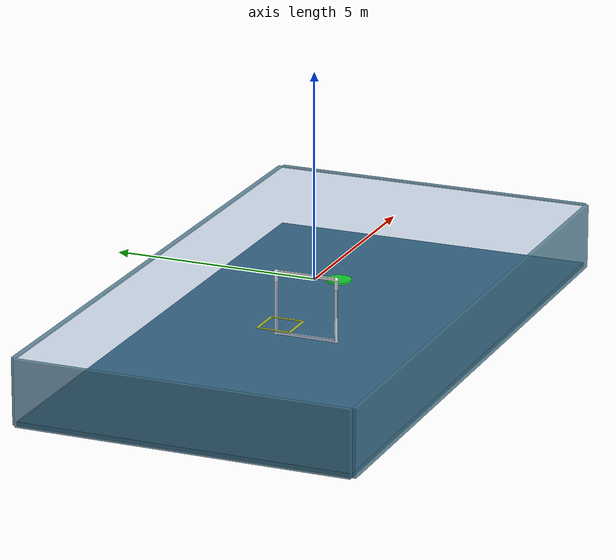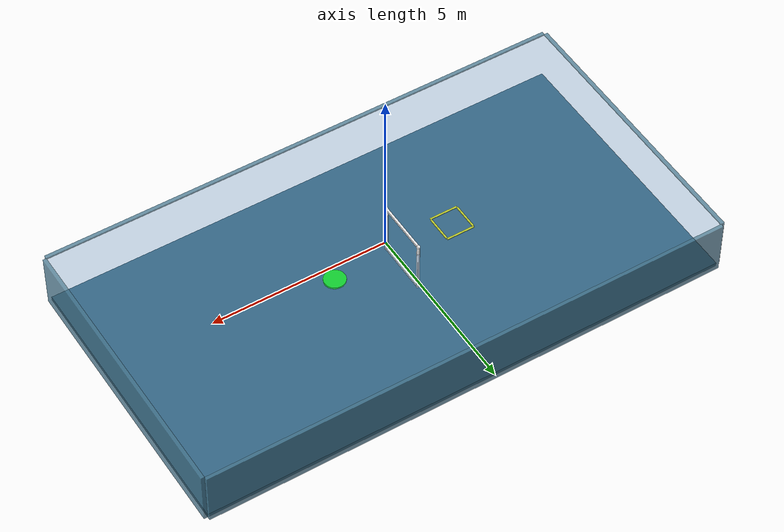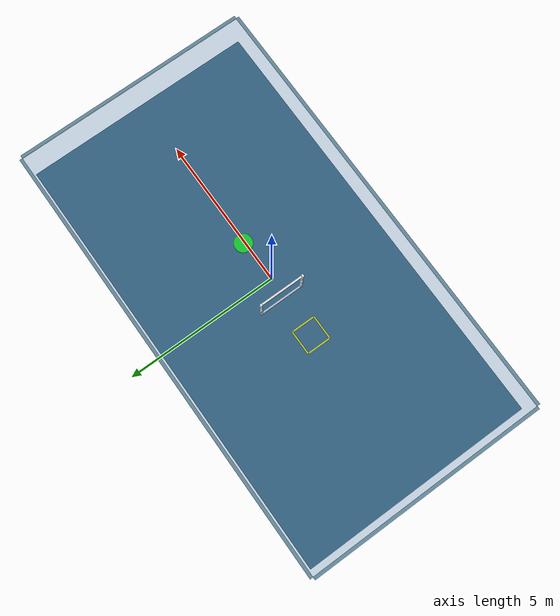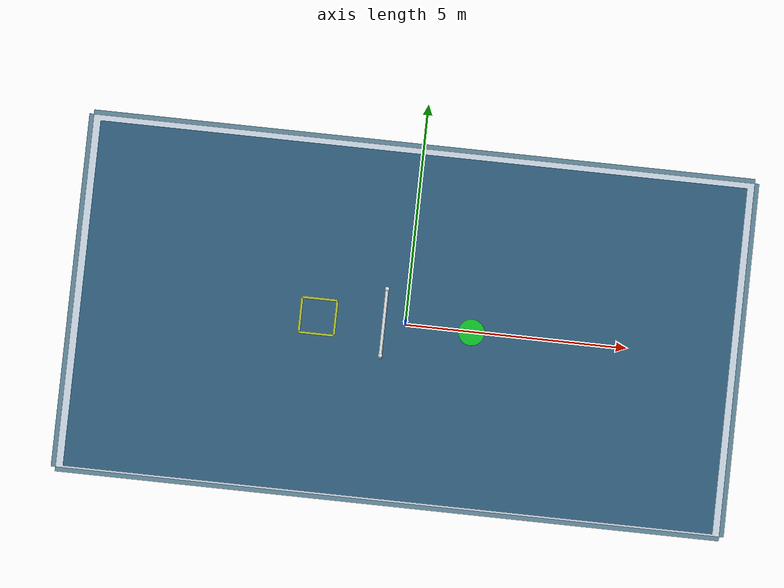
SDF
<?xml version="1.0" ?>
<sdf version="1.6">
  <world name="underwater_pool">

    <!-- Scene Configuration -->
    <scene>
      <ambient>0.1 0.3 0.4</ambient>
      <background>0.0 0.3 0.5</background>
      <shadows>true</shadows>
    </scene>

    <!-- Physics Configuration -->
    <physics name="default" type="ode">
      <max_step_size>0.001</max_step_size>
      <real_time_factor>1.0</real_time_factor>
      <real_time_update_rate>1000</real_time_update_rate>
      <gravity>0 0 -9.81</gravity>
    </physics>

    <!-- Required Plugins -->
    <plugin name='ignition::gazebo::systems::Physics' filename='ignition-gazebo-physics-system'/>
    <plugin name='ignition::gazebo::systems::UserCommands' filename='ignition-gazebo-user-commands-system'/>
    <plugin name='ignition::gazebo::systems::SceneBroadcaster' filename='ignition-gazebo-scene-broadcaster-system'/>
    <plugin filename="ignition-gazebo-sensors-system" name="ignition::gazebo::systems::Sensors">
      <render_engine>ogre2</render_engine>
    </plugin>
    <plugin filename="ignition-gazebo-contact-system" name="ignition::gazebo::systems::Contact"/>
    <plugin filename="ignition-gazebo-buoyancy-system" name="ignition::gazebo::systems::Buoyancy">
      <uniform_fluid_density>1000</uniform_fluid_density>
    </plugin>

    <!-- Directional Sun Light -->
    <light type="directional" name="sun">
      <cast_shadows>true</cast_shadows>
      <pose>0 0 10 0 0 0</pose>
      <diffuse>0.8 0.8 0.8 1</diffuse>
      <specular>0.3 0.3 0.3 1</specular>
      <attenuation>
        <range>1000</range>
        <constant>0.9</constant>
        <linear>0.01</linear>
        <quadratic>0.001</quadratic>
      </attenuation>
      <direction>-0.5 0.1 -0.9</direction>
    </light>

    <!-- Additional Underwater Lighting for better visibility -->
    <light type="point" name="underwater_light_1">
      <pose>0 0 -0.5 0 0 0</pose>
      <diffuse>0.5 0.6 0.7 1</diffuse>
      <specular>0.2 0.2 0.2 1</specular>
      <attenuation>
        <range>25</range>
        <constant>0.5</constant>
        <linear>0.01</linear>
        <quadratic>0.001</quadratic>
      </attenuation>
    </light>

    <light type="point" name="gate_spotlight">
      <pose>0.5 0 0 0 0 0</pose>
      <diffuse>0.9 0.9 0.9 1</diffuse>
      <specular>0.5 0.5 0.5 1</specular>
      <attenuation>
        <range>15</range>
        <constant>0.3</constant>
        <linear>0.01</linear>
        <quadratic>0.001</quadratic>
      </attenuation>
    </light>

    <!-- POOL STRUCTURE - 15m x 8m x 2m pool for navigation                    -->
    <model name="pool">
      <static>true</static>
      <link name="pool_link">

        <!-- Pool Floor at -1.5m depth -->
        <collision name="floor_collision">
          <pose>0 0 -1.5 0 0 0</pose>
          <geometry>
            <box>
              <size>15 8 0.1</size>
            </box>
          </geometry>
        </collision>
        <visual name="floor_visual">
          <pose>0 0 -1.5 0 0 0</pose>
          <geometry>
            <box>
              <size>15 8 0.1</size>
            </box>
          </geometry>
          <material>
            <ambient>0.2 0.4 0.5 1</ambient>
            <diffuse>0.2 0.4 0.5 1</diffuse>
            <specular>0.1 0.1 0.1 1</specular>
          </material>
        </visual>

        <!-- Wall 1 (Front +X) -->
        <collision name="wall1_collision">
          <pose>7.55 0 -0.75 0 0 0</pose>
          <geometry>
            <box>
              <size>0.1 8 1.6</size>
            </box>
          </geometry>
        </collision>
        <visual name="wall1_visual">
          <pose>7.55 0 -0.75 0 0 0</pose>
          <geometry>
            <box>
              <size>0.1 8 1.6</size>
            </box>
          </geometry>
          <material>
            <ambient>0.3 0.5 0.6 0.8</ambient>
            <diffuse>0.3 0.5 0.6 0.8</diffuse>
            <specular>0.2 0.2 0.2 1</specular>
          </material>
        </visual>

        <!-- Wall 2 (Back -X) -->
        <collision name="wall2_collision">
          <pose>-7.55 0 -0.75 0 0 0</pose>
          <geometry>
            <box>
              <size>0.1 8 1.6</size>
            </box>
          </geometry>
        </collision>
        <visual name="wall2_visual">
          <pose>-7.55 0 -0.75 0 0 0</pose>
          <geometry>
            <box>
              <size>0.1 8 1.6</size>
            </box>
          </geometry>
          <material>
            <ambient>0.3 0.5 0.6 0.8</ambient>
            <diffuse>0.3 0.5 0.6 0.8</diffuse>
            <specular>0.2 0.2 0.2 1</specular>
          </material>
        </visual>

        <!-- Wall 3 (Left +Y) -->
        <collision name="wall3_collision">
          <pose>0 4.05 -0.75 0 0 0</pose>
          <geometry>
            <box>
              <size>15 0.1 1.6</size>
            </box>
          </geometry>
        </collision>
        <visual name="wall3_visual">
          <pose>0 4.05 -0.75 0 0 0</pose>
          <geometry>
            <box>
              <size>15 0.1 1.6</size>
            </box>
          </geometry>
          <material>
            <ambient>0.3 0.5 0.6 0.8</ambient>
            <diffuse>0.3 0.5 0.6 0.8</diffuse>
            <specular>0.2 0.2 0.2 1</specular>
          </material>
        </visual>

        <!-- Wall 4 (Right -Y) -->
        <collision name="wall4_collision">
          <pose>0 -4.05 -0.75 0 0 0</pose>
          <geometry>
            <box>
              <size>15 0.1 1.6</size>
            </box>
          </geometry>
        </collision>
        <visual name="wall4_visual">
          <pose>0 -4.05 -0.75 0 0 0</pose>
          <geometry>
            <box>
              <size>15 0.1 1.6</size>
            </box>
          </geometry>
          <material>
            <ambient>0.3 0.5 0.6 0.8</ambient>
            <diffuse>0.3 0.5 0.6 0.8</diffuse>
            <specular>0.2 0.2 0.2 1</specular>
          </material>
        </visual>

        <!-- Water Surface Indicator -->
        <visual name="water_surface">
          <pose>0 0 0 0 0 0</pose>
          <geometry>
            <box>
              <size>15 8 0.01</size>
            </box>
          </geometry>
          <material>
            <ambient>0.3 0.5 0.7 0.3</ambient>
            <diffuse>0.3 0.5 0.7 0.3</diffuse>
            <specular>0.5 0.5 0.5 0.3</specular>
          </material>
        </visual>

      </link>
    </model>

    <!-- STARTING ZONE MARKER                                                   -->
    <!-- Located at X=-2.0m, Y=0, Z=-0.5m (0.5m below surface)                -->
    <!-- This is where the robot spawns                                         -->
    <model name="starting_marker">
      <static>true</static>
      <pose>-2.0 0 -0.45 0 0 0</pose>
      <link name="marker_link">

        <!-- Yellow rectangular frame marker -->
        <visual name="marker_top">
          <pose>0 0.4 0 0 0 0</pose>
          <geometry>
            <box>
              <size>0.8 0.05 0.02</size>
            </box>
          </geometry>
          <material>
            <ambient>1 1 0 1</ambient>
            <diffuse>1 1 0 1</diffuse>
            <emissive>0.8 0.8 0 1</emissive>
          </material>
        </visual>

        <visual name="marker_bottom">
          <pose>0 -0.4 0 0 0 0</pose>
          <geometry>
            <box>
              <size>0.8 0.05 0.02</size>
            </box>
          </geometry>
          <material>
            <ambient>1 1 0 1</ambient>
            <diffuse>1 1 0 1</diffuse>
            <emissive>0.8 0.8 0 1</emissive>
          </material>
        </visual>

        <visual name="marker_left">
          <pose>-0.4 0 0 0 0 0</pose>
          <geometry>
            <box>
              <size>0.05 0.75 0.02</size>
            </box>
          </geometry>
          <material>
            <ambient>1 1 0 1</ambient>
            <diffuse>1 1 0 1</diffuse>
            <emissive>0.8 0.8 0 1</emissive>
          </material>
        </visual>

        <visual name="marker_right">
          <pose>0.4 0 0 0 0 0</pose>
          <geometry>
            <box>
              <size>0.05 0.75 0.02</size>
            </box>
          </geometry>
          <material>
            <ambient>1 1 0 1</ambient>
            <diffuse>1 1 0 1</diffuse>
            <emissive>0.8 0.8 0 1</emissive>
          </material>
        </visual>

      </link>
    </model>

    <!-- WHITE/OFF-WHITE NAVIGATION GATE - 1.5m x 1.5m (150cm x 150cm)        -->
    <!-- Position: 1.5m ahead of starting position (X=-0.5m, Y=0, Z=-0.5m)    -->
    <!-- Gate opening: 1.5m wide x 1.5m tall                                   -->
    <!-- Bright white/off-white color with high visibility and emissive        -->
    <model name="navigation_gate">
      <static>true</static>
      <pose>-0.5 0 -0.5 0 0 0</pose>
      <link name="gate_link">

        <!-- Left Post (0.06m x 0.06m x 1.5m) -->
        <collision name="left_post_collision">
          <pose>0 -0.75 0 0 0 0</pose>
          <geometry>
            <box>
              <size>0.06 0.06 1.5</size>
            </box>
          </geometry>
        </collision>
        <visual name="left_post_visual">
          <pose>0 -0.75 0 0 0 0</pose>
          <geometry>
            <box>
              <size>0.06 0.06 1.5</size>
            </box>
          </geometry>
          <material>
            <ambient>0.95 0.95 0.95 1</ambient>
            <diffuse>0.95 0.95 0.95 1</diffuse>
            <specular>0.9 0.9 0.9 1</specular>
            <emissive>0.75 0.75 0.75 1</emissive>
          </material>
        </visual>

        <!-- Right Post (0.06m x 0.06m x 1.5m) -->
        <collision name="right_post_collision">
          <pose>0 0.75 0 0 0 0</pose>
          <geometry>
            <box>
              <size>0.06 0.06 1.5</size>
            </box>
          </geometry>
        </collision>
        <visual name="right_post_visual">
          <pose>0 0.75 0 0 0 0</pose>
          <geometry>
            <box>
              <size>0.06 0.06 1.5</size>
            </box>
          </geometry>
          <material>
            <ambient>0.95 0.95 0.95 1</ambient>
            <diffuse>0.95 0.95 0.95 1</diffuse>
            <specular>0.9 0.9 0.9 1</specular>
            <emissive>0.75 0.75 0.75 1</emissive>
          </material>
        </visual>

        <!-- Top Bar (0.06m x 1.5m x 0.06m) -->
        <collision name="top_bar_collision">
          <pose>0 0 0.75 0 0 0</pose>
          <geometry>
            <box>
              <size>0.06 1.5 0.06</size>
            </box>
          </geometry>
        </collision>
        <visual name="top_bar_visual">
          <pose>0 0 0.75 0 0 0</pose>
          <geometry>
            <box>
              <size>0.06 1.5 0.06</size>
            </box>
          </geometry>
          <material>
            <ambient>0.95 0.95 0.95 1</ambient>
            <diffuse>0.95 0.95 0.95 1</diffuse>
            <specular>0.9 0.9 0.9 1</specular>
            <emissive>0.75 0.75 0.75 1</emissive>
          </material>
        </visual>

        <!-- Bottom Bar (0.06m x 1.5m x 0.06m) -->
        <collision name="bottom_bar_collision">
          <pose>0 0 -0.75 0 0 0</pose>
          <geometry>
            <box>
              <size>0.06 1.5 0.06</size>
            </box>
          </geometry>
        </collision>
        <visual name="bottom_bar_visual">
          <pose>0 0 -0.75 0 0 0</pose>
          <geometry>
            <box>
              <size>0.06 1.5 0.06</size>
            </box>
          </geometry>
          <material>
            <ambient>0.95 0.95 0.95 1</ambient>
            <diffuse>0.95 0.95 0.95 1</diffuse>
            <specular>0.9 0.9 0.9 1</specular>
            <emissive>0.75 0.75 0.75 1</emissive>
          </material>
        </visual>

        <!-- Additional cylindrical markers for enhanced visibility -->
        <!-- Left post marker -->
        <visual name="left_marker_cylinder">
          <pose>0 -0.75 0 0 0 0</pose>
          <geometry>
            <cylinder>
              <radius>0.04</radius>
              <length>1.5</length>
            </cylinder>
          </geometry>
          <material>
            <ambient>1.0 1.0 1.0 1</ambient>
            <diffuse>1.0 1.0 1.0 1</diffuse>
            <specular>0.95 0.95 0.95 1</specular>
            <emissive>0.85 0.85 0.85 1</emissive>
          </material>
        </visual>

        <!-- Right post marker -->
        <visual name="right_marker_cylinder">
          <pose>0 0.75 0 0 0 0</pose>
          <geometry>
            <cylinder>
              <radius>0.04</radius>
              <length>1.5</length>
            </cylinder>
          </geometry>
          <material>
            <ambient>1.0 1.0 1.0 1</ambient>
            <diffuse>1.0 1.0 1.0 1</diffuse>
            <specular>0.95 0.95 0.95 1</specular>
            <emissive>0.85 0.85 0.85 1</emissive>
          </material>
        </visual>

        <!-- Corner markers for better edge detection -->
        <visual name="corner_tl">
          <pose>0 -0.75 0.75 0 0 0</pose>
          <geometry>
            <sphere>
              <radius>0.05</radius>
            </sphere>
          </geometry>
          <material>
            <ambient>1.0 1.0 1.0 1</ambient>
            <diffuse>1.0 1.0 1.0 1</diffuse>
            <emissive>0.9 0.9 0.9 1</emissive>
          </material>
        </visual>

        <visual name="corner_tr">
          <pose>0 0.75 0.75 0 0 0</pose>
          <geometry>
            <sphere>
              <radius>0.05</radius>
            </sphere>
          </geometry>
          <material>
            <ambient>1.0 1.0 1.0 1</ambient>
            <diffuse>1.0 1.0 1.0 1</diffuse>
            <emissive>0.9 0.9 0.9 1</emissive>
          </material>
        </visual>

        <visual name="corner_bl">
          <pose>0 -0.75 -0.75 0 0 0</pose>
          <geometry>
            <sphere>
              <radius>0.05</radius>
            </sphere>
          </geometry>
          <material>
            <ambient>1.0 1.0 1.0 1</ambient>
            <diffuse>1.0 1.0 1.0 1</diffuse>
            <emissive>0.9 0.9 0.9 1</emissive>
          </material>
        </visual>

        <visual name="corner_br">
          <pose>0 0.75 -0.75 0 0 0</pose>
          <geometry>
            <sphere>
              <radius>0.05</radius>
            </sphere>
          </geometry>
          <material>
            <ambient>1.0 1.0 1.0 1</ambient>
            <diffuse>1.0 1.0 1.0 1</diffuse>
            <emissive>0.9 0.9 0.9 1</emissive>
          </material>
        </visual>

      </link>
    </model>

    <!-- FINISH MARKER (Optional - indicates successful passage)               -->
    <!-- Located 2m past the gate                                              -->
    <model name="finish_marker">
      <static>true</static>
      <pose>1.5 0 -0.5 0 0 0</pose>
      <link name="finish_link">
        <visual name="finish_visual">
          <geometry>
            <cylinder>
              <radius>0.3</radius>
              <length>0.05</length>
            </cylinder>
          </geometry>
          <material>
            <ambient>0 1 0 1</ambient>
            <diffuse>0 1 0 1</diffuse>
            <emissive>0 0.8 0 1</emissive>
          </material>
        </visual>
      </link>
    </model>

  </world>
</sdf>
